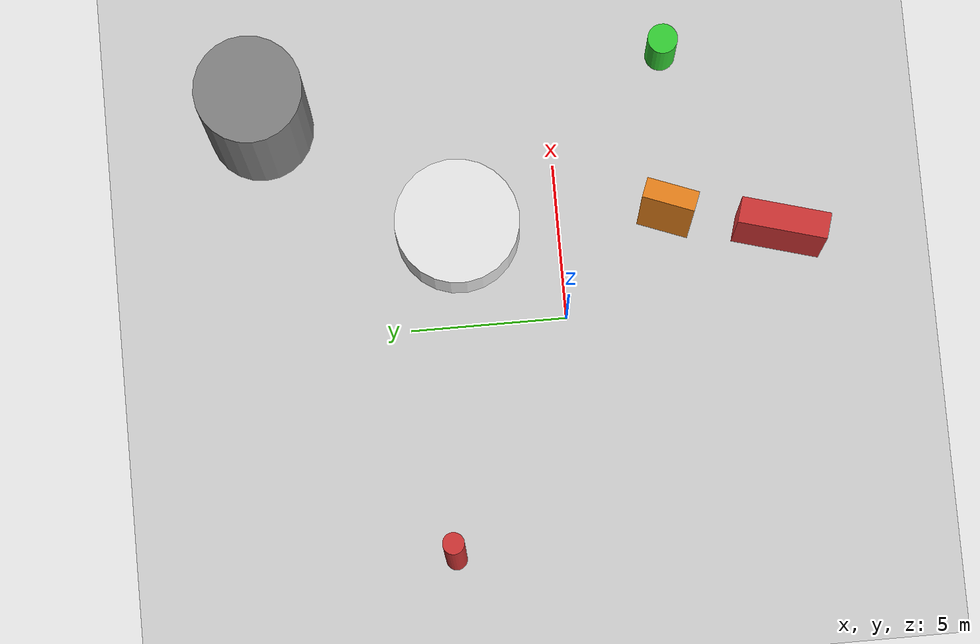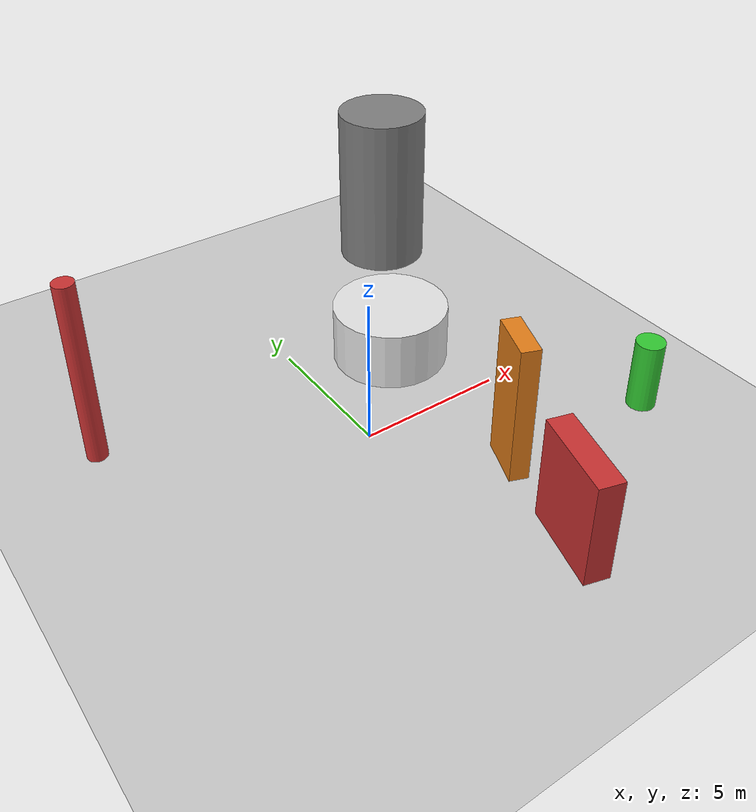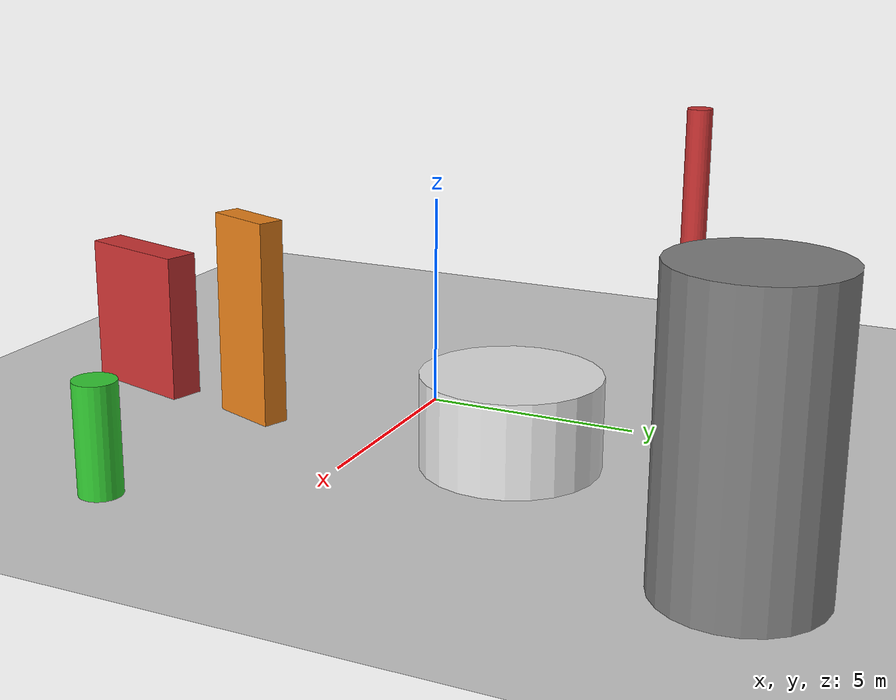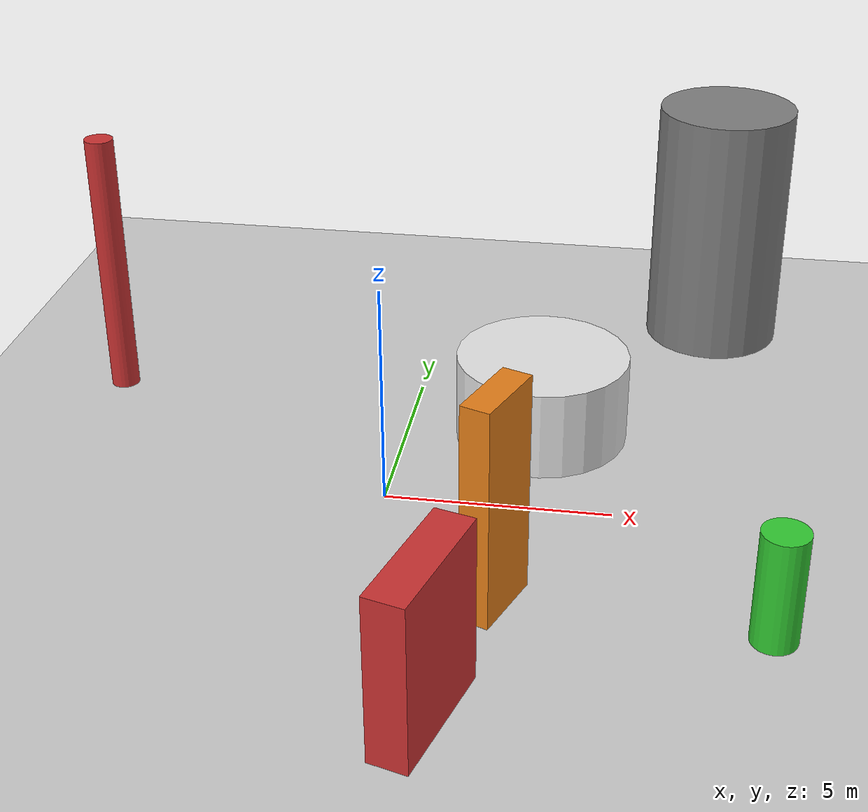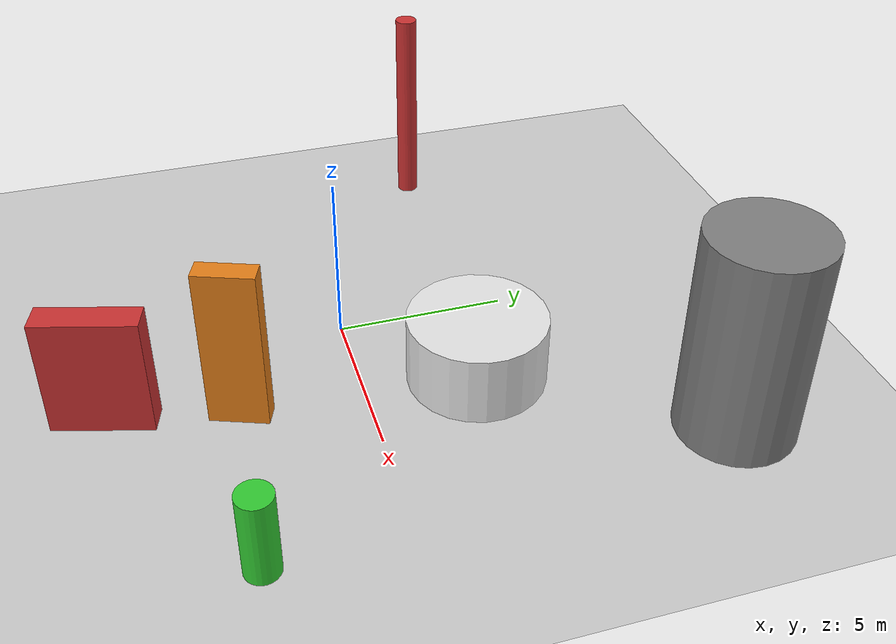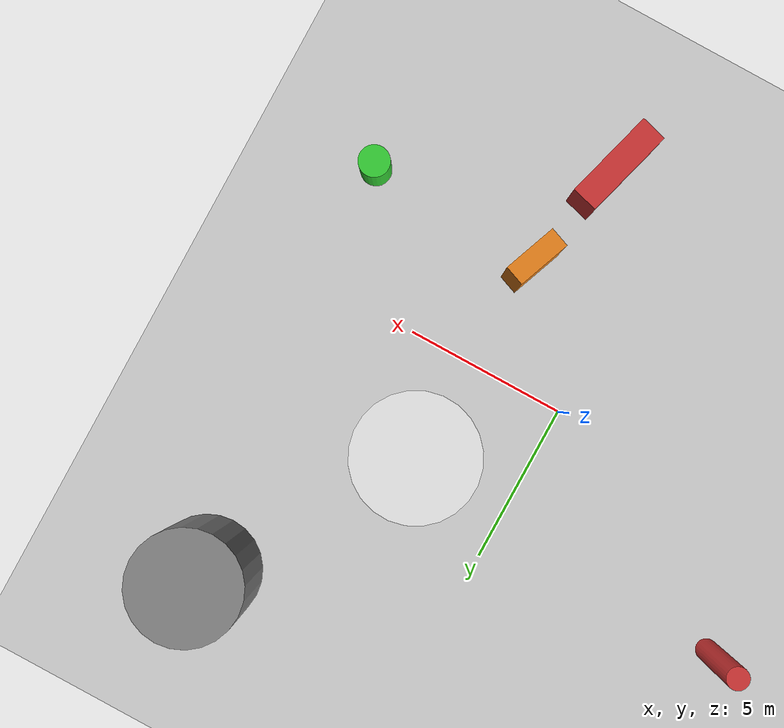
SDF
<?xml version='1.0'?>
<sdf version='1.6'>
  <world name='default'>
    <!-- Sun light -->
    <light name='sun' type='directional'>
      <cast_shadows>1</cast_shadows>
      <pose>0 0 10 0 0 0</pose>
      <diffuse>0.8 0.8 0.8 1</diffuse>
      <specular>0.2 0.2 0.2 1</specular>
      <attenuation>
        <range>1000</range>
        <constant>0.9</constant>
        <linear>0.01</linear>
        <quadratic>0.001</quadratic>
      </attenuation>
      <direction>-0.5 0.1 -0.9</direction>
    </light>

    <!-- Ground plane -->
    <model name='ground_plane'>
      <static>1</static>
      <link name='link'>
        <collision name='collision'>
          <geometry>
            <plane>
              <normal>0 0 1</normal>
              <size>100 100</size>
            </plane>
          </geometry>
          <surface>
            <contact>
              <collide_bitmask>65535</collide_bitmask>
              <ode/>
            </contact>
            <friction>
              <ode>
                <mu>100</mu>
                <mu2>50</mu2>
              </ode>
              <torsional><ode/></torsional>
            </friction>
            <bounce/>
          </surface>
          <max_contacts>10</max_contacts>
        </collision>
        <visual name='visual'>
          <cast_shadows>0</cast_shadows>
          <geometry>
            <plane>
              <normal>0 0 1</normal>
              <size>100 100</size>
            </plane>
          </geometry>
          <material>
            <script>
              <uri>file://media/materials/scripts/gazebo.material</uri>
              <n>Gazebo/Grey</n>
            </script>
          </material>
        </visual>
      </link>
    </model>

    <!-- Environment -->
    <magnetic_field>6e-06 2.3e-05 -4.2e-05</magnetic_field>
    <atmosphere type='adiabatic'/>
    <physics name='default_physics' default='0' type='ode'>
      <gravity>0 0 -9.8</gravity>
      <max_step_size>0.004</max_step_size>
      <real_time_factor>1</real_time_factor>
      <real_time_update_rate>250</real_time_update_rate>
    </physics>
    <scene>
      <ambient>0.4 0.4 0.4 1</ambient>
      <background>0.7 0.7 0.7 1</background>
      <shadows>1</shadows>
    </scene>
    <wind/>
    <spherical_coordinates>
      <surface_model>EARTH_WGS84</surface_model>
      <latitude_deg>0</latitude_deg>
      <longitude_deg>0</longitude_deg>
      <elevation>0</elevation>
      <heading_deg>0</heading_deg>
    </spherical_coordinates>

    <!-- ============ OBSTACLES (6) ============ -->
    <model name='obs_00'>
      <static>1</static>
      <link name='link'>
        <visual name='visual'>
          <geometry>
            <cylinder>
              <radius>1.6836</radius>
              <length>6.1714</length>
            </cylinder>
          </geometry>
          <material>
            <script>
              <n>Gazebo/Grey</n>
              <uri>file://media/materials/scripts/gazebo.material</uri>
            </script>
            <ambient>0.5 0.5 0.5 1</ambient>
          </material>
        </visual>
        <collision name='collision'>
          <geometry>
            <cylinder>
              <radius>1.6836</radius>
              <length>6.1714</length>
            </cylinder>
          </geometry>
          <max_contacts>10</max_contacts>
          <surface>
            <contact><ode/></contact>
            <bounce/>
            <friction>
              <ode><mu>1</mu><mu2>1</mu2></ode>
              <torsional><ode/></torsional>
            </friction>
          </surface>
        </collision>
      </link>
      <pose>7.0313 9.2882 3.0857 0 0 2.1052</pose>
    </model>

    <model name='obs_01'>
      <static>1</static>
      <link name='link'>
        <visual name='visual'>
          <geometry>
            <box>
              <size>0.8271 2.8466 3.5424</size>
            </box>
          </geometry>
          <material>
            <script>
              <n>Gazebo/Red</n>
              <uri>file://media/materials/scripts/gazebo.material</uri>
            </script>
            <ambient>0.8 0.2 0.2 1</ambient>
          </material>
        </visual>
        <collision name='collision'>
          <geometry>
            <box>
              <size>0.8271 2.8466 3.5424</size>
            </box>
          </geometry>
          <max_contacts>10</max_contacts>
          <surface>
            <contact><ode/></contact>
            <bounce/>
            <friction>
              <ode><mu>1</mu><mu2>1</mu2></ode>
              <torsional><ode/></torsional>
            </friction>
          </surface>
        </collision>
      </link>
      <pose>2.0540 -6.9925 1.7712 0 0 2.8665</pose>
    </model>

    <model name='obs_02'>
      <static>1</static>
      <link name='link'>
        <visual name='visual'>
          <geometry>
            <cylinder>
              <radius>0.4835</radius>
              <length>2.4993</length>
            </cylinder>
          </geometry>
          <material>
            <script>
              <n>Gazebo/Green</n>
              <uri>file://media/materials/scripts/gazebo.material</uri>
            </script>
            <ambient>0.2 0.8 0.2 1</ambient>
          </material>
        </visual>
        <collision name='collision'>
          <geometry>
            <cylinder>
              <radius>0.4835</radius>
              <length>2.4993</length>
            </cylinder>
          </geometry>
          <max_contacts>10</max_contacts>
          <surface>
            <contact><ode/></contact>
            <bounce/>
            <friction>
              <ode><mu>1</mu><mu2>1</mu2></ode>
              <torsional><ode/></torsional>
            </friction>
          </surface>
        </collision>
      </link>
      <pose>8.3349 -3.7954 1.2497 0 0 1.1391</pose>
    </model>

    <model name='obs_03'>
      <static>1</static>
      <link name='link'>
        <visual name='visual'>
          <geometry>
            <cylinder>
              <radius>2.0000</radius>
              <length>2.0846</length>
            </cylinder>
          </geometry>
          <material>
            <script>
              <n>Gazebo/White</n>
              <uri>file://media/materials/scripts/gazebo.material</uri>
            </script>
            <ambient>0.9 0.9 0.9 1</ambient>
          </material>
        </visual>
        <collision name='collision'>
          <geometry>
            <cylinder>
              <radius>2.0000</radius>
              <length>2.0846</length>
            </cylinder>
          </geometry>
          <max_contacts>10</max_contacts>
          <surface>
            <contact><ode/></contact>
            <bounce/>
            <friction>
              <ode><mu>1</mu><mu2>1</mu2></ode>
              <torsional><ode/></torsional>
            </friction>
          </surface>
        </collision>
      </link>
      <pose>3.1211 3.2427 1.0423 0 0 0.6032</pose>
    </model>

    <model name='obs_04'>
      <static>1</static>
      <link name='link'>
        <visual name='visual'>
          <geometry>
            <cylinder>
              <radius>0.3371</radius>
              <length>6.3961</length>
            </cylinder>
          </geometry>
          <material>
            <script>
              <n>Gazebo/Red</n>
              <uri>file://media/materials/scripts/gazebo.material</uri>
            </script>
            <ambient>0.8 0.2 0.2 1</ambient>
          </material>
        </visual>
        <collision name='collision'>
          <geometry>
            <cylinder>
              <radius>0.3371</radius>
              <length>6.3961</length>
            </cylinder>
          </geometry>
          <max_contacts>10</max_contacts>
          <surface>
            <contact><ode/></contact>
            <bounce/>
            <friction>
              <ode><mu>1</mu><mu2>1</mu2></ode>
              <torsional><ode/></torsional>
            </friction>
          </surface>
        </collision>
      </link>
      <pose>-7.4210 4.1767 3.1981 0 0 2.6529</pose>
    </model>

    <model name='obs_05'>
      <static>1</static>
      <link name='link'>
        <visual name='visual'>
          <geometry>
            <box>
              <size>0.6321 1.6787 4.8315</size>
            </box>
          </geometry>
          <material>
            <script>
              <n>Gazebo/Orange</n>
              <uri>file://media/materials/scripts/gazebo.material</uri>
            </script>
            <ambient>0.9 0.5 0.1 1</ambient>
          </material>
        </visual>
        <collision name='collision'>
          <geometry>
            <box>
              <size>0.6321 1.6787 4.8315</size>
            </box>
          </geometry>
          <max_contacts>10</max_contacts>
          <surface>
            <contact><ode/></contact>
            <bounce/>
            <friction>
              <ode><mu>1</mu><mu2>1</mu2></ode>
              <torsional><ode/></torsional>
            </friction>
          </surface>
        </collision>
      </link>
      <pose>2.8699 -3.4305 2.4158 0 0 2.7762</pose>
    </model>

    <!-- GUI camera -->
    <gui fullscreen='0'>
      <camera name='user_camera'>
        <pose>-15 0 18 0 0.85 0.15</pose>
        <view_controller>orbit</view_controller>
        <projection_type>perspective</projection_type>
      </camera>
    </gui>
  </world>
</sdf>
